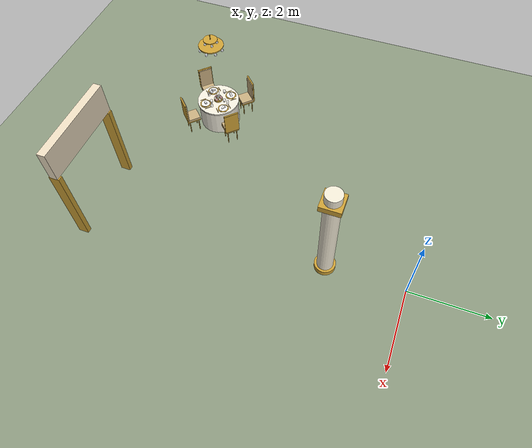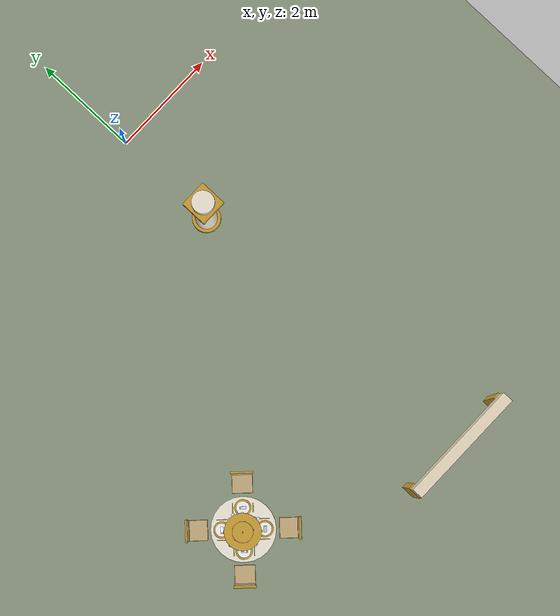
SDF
<sdf version="1.9">
 <world name="dar_tunibot">
  <model name="ground_plane">
   <static>true</static>
   <link name="link">
    <collision name="collision">
     <geometry><plane><normal>0 0 1</normal><size>60 60</size></plane></geometry>
    </collision>
    <visual name="visual">
     <geometry><plane><normal>0 0 1</normal><size>60 60</size></plane></geometry>
     <material><ambient>0.55 0.6 0.5 1</ambient><diffuse>0.55 0.6 0.5 1</diffuse></material>
    </visual>
   </link>
  </model>
  <model name="entrance">
   <static>true</static>
   <pose>0.0 -8.0 0 0 0 0.0</pose>
   <link name="link">
    <visual name="post_a_v">
     <pose>-1.060 0.000 1.100 0.0000 0.0000 0.0000</pose>
     <geometry><box><size>0.120 0.260 2.200</size></box></geometry>
     <material>
      <ambient>0.8 0.63 0.21 1</ambient>
      <diffuse>0.8 0.63 0.21 1</diffuse>
      <specular>0.1 0.1 0.1 1</specular>
     </material>
    </visual>
    <visual name="post_b_v">
     <pose>1.060 0.000 1.100 0.0000 0.0000 0.0000</pose>
     <geometry><box><size>0.120 0.260 2.200</size></box></geometry>
     <material>
      <ambient>0.8 0.63 0.21 1</ambient>
      <diffuse>0.8 0.63 0.21 1</diffuse>
      <specular>0.1 0.1 0.1 1</specular>
     </material>
    </visual>
    <visual name="lintel_v">
     <pose>0.000 0.000 2.600 0.0000 0.0000 0.0000</pose>
     <geometry><box><size>2.240 0.200 0.800</size></box></geometry>
     <material>
      <ambient>0.93 0.87 0.76 1</ambient>
      <diffuse>0.93 0.87 0.76 1</diffuse>
      <specular>0.1 0.1 0.1 1</specular>
     </material>
    </visual>
    <collision name="lintel_c">
     <pose>0.000 0.000 2.600 0.0000 0.0000 0.0000</pose>
     <geometry><box><size>2.240 0.200 0.800</size></box></geometry>
    </collision>
   </link>
  </model>
  <model name="column_1">
   <static>true</static>
   <pose>0 -2 0 0 0 0</pose>
   <link name="link">
    <visual name="base_v">
     <pose>0.000 0.000 0.075 0.0000 0.0000 0.0000</pose>
     <geometry><cylinder><radius>0.260</radius><length>0.150</length></cylinder></geometry>
     <material>
      <ambient>0.8 0.63 0.21 1</ambient>
      <diffuse>0.8 0.63 0.21 1</diffuse>
      <specular>0.1 0.1 0.1 1</specular>
     </material>
    </visual>
    <collision name="base_c">
     <pose>0.000 0.000 0.075 0.0000 0.0000 0.0000</pose>
     <geometry><cylinder><radius>0.260</radius><length>0.150</length></cylinder></geometry>
    </collision>
    <visual name="shaft_v">
     <pose>0.000 0.000 1.500 0.0000 0.0000 0.0000</pose>
     <geometry><cylinder><radius>0.200</radius><length>3.000</length></cylinder></geometry>
     <material>
      <ambient>0.95 0.92 0.84 1</ambient>
      <diffuse>0.95 0.92 0.84 1</diffuse>
      <specular>0.1 0.1 0.1 1</specular>
     </material>
    </visual>
    <collision name="shaft_c">
     <pose>0.000 0.000 1.500 0.0000 0.0000 0.0000</pose>
     <geometry><cylinder><radius>0.200</radius><length>3.000</length></cylinder></geometry>
    </collision>
    <visual name="capital_v">
     <pose>0.000 0.000 2.700 0.0000 0.0000 0.0000</pose>
     <geometry><box><size>0.500 0.500 0.150</size></box></geometry>
     <material>
      <ambient>0.8 0.63 0.21 1</ambient>
      <diffuse>0.8 0.63 0.21 1</diffuse>
      <specular>0.1 0.1 0.1 1</specular>
     </material>
    </visual>
   </link>
  </model>
  <model name="table_6">
   <static>true</static>
   <pose>-3.6 -6.3 0 0 0 0</pose>
   <link name="link">
    <visual name="cloth_v">
     <pose>0.000 0.000 0.370 0.0000 0.0000 0.0000</pose>
     <geometry><cylinder><radius>0.550</radius><length>0.740</length></cylinder></geometry>
     <material>
      <ambient>0.95 0.93 0.87 1</ambient>
      <diffuse>0.95 0.93 0.87 1</diffuse>
      <specular>0.1 0.1 0.1 1</specular>
     </material>
    </visual>
    <collision name="cloth_c">
     <pose>0.000 0.000 0.370 0.0000 0.0000 0.0000</pose>
     <geometry><cylinder><radius>0.550</radius><length>0.740</length></cylinder></geometry>
    </collision>
    <visual name="drape_v">
     <pose>0.000 0.000 0.750 0.0000 0.0000 0.0000</pose>
     <geometry><cylinder><radius>0.580</radius><length>0.040</length></cylinder></geometry>
     <material>
      <ambient>0.95 0.93 0.87 1</ambient>
      <diffuse>0.95 0.93 0.87 1</diffuse>
      <specular>0.1 0.1 0.1 1</specular>
     </material>
    </visual>
    <visual name="bowl_v">
     <pose>0.000 0.000 0.795 0.0000 0.0000 0.0000</pose>
     <geometry><cylinder><radius>0.120</radius><length>0.050</length></cylinder></geometry>
     <material>
      <ambient>0.8 0.63 0.21 1</ambient>
      <diffuse>0.8 0.63 0.21 1</diffuse>
      <specular>0.1 0.1 0.1 1</specular>
     </material>
    </visual>
    <visual name="bowl_foot_v">
     <pose>0.000 0.000 0.775 0.0000 0.0000 0.0000</pose>
     <geometry><cylinder><radius>0.060</radius><length>0.020</length></cylinder></geometry>
     <material>
      <ambient>0.8 0.63 0.21 1</ambient>
      <diffuse>0.8 0.63 0.21 1</diffuse>
      <specular>0.1 0.1 0.1 1</specular>
     </material>
    </visual>
    <visual name="candle_v">
     <pose>0.000 0.000 0.870 0.0000 0.0000 0.0000</pose>
     <geometry><cylinder><radius>0.022</radius><length>0.100</length></cylinder></geometry>
     <material>
      <ambient>0.98 0.98 0.97 1</ambient>
      <diffuse>0.98 0.98 0.97 1</diffuse>
      <specular>0.1 0.1 0.1 1</specular>
     </material>
    </visual>
    <visual name="flame_v">
     <pose>0.000 0.000 0.935 0.0000 0.0000 0.0000</pose>
     <geometry><sphere><radius>0.014</radius></sphere></geometry>
     <material>
      <ambient>0.8 0.63 0.21 1</ambient>
      <diffuse>0.8 0.63 0.21 1</diffuse>
      <specular>0.1 0.1 0.1 1</specular>
      <emissive>1.0 0.6 0.2 1</emissive>
     </material>
    </visual>
    <visual name="hurricane_v">
     <pose>0.000 0.000 0.940 0.0000 0.0000 0.0000</pose>
     <geometry><cylinder><radius>0.045</radius><length>0.240</length></cylinder></geometry>
     <transparency>0.75</transparency>
     <material>
      <ambient>0.9 0.92 0.96 1</ambient>
      <diffuse>0.9 0.92 0.96 1</diffuse>
      <specular>0.1 0.1 0.1 1</specular>
     </material>
    </visual>
    <visual name="rose0_v">
     <pose>0.085 0.000 0.835 0.0000 0.0000 0.0000</pose>
     <geometry><sphere><radius>0.035</radius></sphere></geometry>
     <material>
      <ambient>0.93 0.7 0.72 1</ambient>
      <diffuse>0.93 0.7 0.72 1</diffuse>
      <specular>0.1 0.1 0.1 1</specular>
     </material>
    </visual>
    <visual name="rose1_v">
     <pose>0.043 0.074 0.835 0.0000 0.0000 0.0000</pose>
     <geometry><sphere><radius>0.035</radius></sphere></geometry>
     <material>
      <ambient>0.97 0.95 0.91 1</ambient>
      <diffuse>0.97 0.95 0.91 1</diffuse>
      <specular>0.1 0.1 0.1 1</specular>
     </material>
    </visual>
    <visual name="rose2_v">
     <pose>-0.042 0.074 0.835 0.0000 0.0000 0.0000</pose>
     <geometry><sphere><radius>0.035</radius></sphere></geometry>
     <material>
      <ambient>0.93 0.7 0.72 1</ambient>
      <diffuse>0.93 0.7 0.72 1</diffuse>
      <specular>0.1 0.1 0.1 1</specular>
     </material>
    </visual>
    <visual name="rose3_v">
     <pose>-0.085 0.000 0.835 0.0000 0.0000 0.0000</pose>
     <geometry><sphere><radius>0.035</radius></sphere></geometry>
     <material>
      <ambient>0.97 0.95 0.91 1</ambient>
      <diffuse>0.97 0.95 0.91 1</diffuse>
      <specular>0.1 0.1 0.1 1</specular>
     </material>
    </visual>
    <visual name="rose4_v">
     <pose>-0.043 -0.074 0.835 0.0000 0.0000 0.0000</pose>
     <geometry><sphere><radius>0.035</radius></sphere></geometry>
     <material>
      <ambient>0.93 0.7 0.72 1</ambient>
      <diffuse>0.93 0.7 0.72 1</diffuse>
      <specular>0.1 0.1 0.1 1</specular>
     </material>
    </visual>
    <visual name="rose5_v">
     <pose>0.043 -0.074 0.835 0.0000 0.0000 0.0000</pose>
     <geometry><sphere><radius>0.035</radius></sphere></geometry>
     <material>
      <ambient>0.97 0.95 0.91 1</ambient>
      <diffuse>0.97 0.95 0.91 1</diffuse>
      <specular>0.1 0.1 0.1 1</specular>
     </material>
    </visual>
    <collision name="seat0_c">
     <pose>0.580 0.580 0.225 0.0000 0.0000 0.0000</pose>
     <geometry><box><size>0.400 0.400 0.450</size></box></geometry>
    </collision>
    <visual name="seat_frame0_v">
     <pose>0.580 0.580 0.430 0.0000 0.0000 0.7854</pose>
     <geometry><box><size>0.370 0.370 0.030</size></box></geometry>
     <material>
      <ambient>0.8 0.63 0.21 1</ambient>
      <diffuse>0.8 0.63 0.21 1</diffuse>
      <specular>0.1 0.1 0.1 1</specular>
     </material>
    </visual>
    <visual name="cushion0_v">
     <pose>0.580 0.580 0.480 0.0000 0.0000 0.7854</pose>
     <geometry><box><size>0.360 0.360 0.070</size></box></geometry>
     <material>
      <ambient>0.78 0.68 0.5 1</ambient>
      <diffuse>0.78 0.68 0.5 1</diffuse>
      <specular>0.1 0.1 0.1 1</specular>
     </material>
    </visual>
    <visual name="back_frame0_v">
     <pose>0.707 0.707 0.780 0.0000 0.0000 0.7854</pose>
     <geometry><box><size>0.025 0.400 0.620</size></box></geometry>
     <material>
      <ambient>0.8 0.63 0.21 1</ambient>
      <diffuse>0.8 0.63 0.21 1</diffuse>
      <specular>0.1 0.1 0.1 1</specular>
     </material>
    </visual>
    <visual name="back0_v">
     <pose>0.697 0.697 0.780 0.0000 0.0000 0.7854</pose>
     <geometry><box><size>0.050 0.360 0.580</size></box></geometry>
     <material>
      <ambient>0.78 0.68 0.5 1</ambient>
      <diffuse>0.78 0.68 0.5 1</diffuse>
      <specular>0.1 0.1 0.1 1</specular>
     </material>
    </visual>
    <visual name="back_top0_v">
     <pose>0.707 0.707 1.090 1.5708 0.0000 0.7854</pose>
     <geometry><cylinder><radius>0.020</radius><length>0.400</length></cylinder></geometry>
     <material>
      <ambient>0.8 0.63 0.21 1</ambient>
      <diffuse>0.8 0.63 0.21 1</diffuse>
      <specular>0.1 0.1 0.1 1</specular>
     </material>
    </visual>
    <visual name="leg0_0_v">
     <pose>0.580 0.396 0.210 0.0000 0.0000 0.7854</pose>
     <geometry><cylinder><radius>0.012</radius><length>0.420</length></cylinder></geometry>
     <material>
      <ambient>0.8 0.63 0.21 1</ambient>
      <diffuse>0.8 0.63 0.21 1</diffuse>
      <specular>0.1 0.1 0.1 1</specular>
     </material>
    </visual>
    <visual name="leg0_1_v">
     <pose>0.396 0.580 0.210 0.0000 0.0000 0.7854</pose>
     <geometry><cylinder><radius>0.012</radius><length>0.420</length></cylinder></geometry>
     <material>
      <ambient>0.8 0.63 0.21 1</ambient>
      <diffuse>0.8 0.63 0.21 1</diffuse>
      <specular>0.1 0.1 0.1 1</specular>
     </material>
    </visual>
    <visual name="leg0_2_v">
     <pose>0.764 0.580 0.210 0.0000 0.0000 0.7854</pose>
     <geometry><cylinder><radius>0.012</radius><length>0.420</length></cylinder></geometry>
     <material>
      <ambient>0.8 0.63 0.21 1</ambient>
      <diffuse>0.8 0.63 0.21 1</diffuse>
      <specular>0.1 0.1 0.1 1</specular>
     </material>
    </visual>
    <visual name="leg0_3_v">
     <pose>0.580 0.764 0.210 0.0000 0.0000 0.7854</pose>
     <geometry><cylinder><radius>0.012</radius><length>0.420</length></cylinder></geometry>
     <material>
      <ambient>0.8 0.63 0.21 1</ambient>
      <diffuse>0.8 0.63 0.21 1</diffuse>
      <specular>0.1 0.1 0.1 1</specular>
     </material>
    </visual>
    <visual name="charger0_v">
     <pose>0.269 0.269 0.773 0.0000 0.0000 0.7854</pose>
     <geometry><cylinder><radius>0.150</radius><length>0.006</length></cylinder></geometry>
     <material>
      <ambient>0.8 0.63 0.21 1</ambient>
      <diffuse>0.8 0.63 0.21 1</diffuse>
      <specular>0.1 0.1 0.1 1</specular>
     </material>
    </visual>
    <visual name="plate0_v">
     <pose>0.269 0.269 0.781 0.0000 0.0000 0.7854</pose>
     <geometry><cylinder><radius>0.120</radius><length>0.010</length></cylinder></geometry>
     <material>
      <ambient>0.98 0.98 0.97 1</ambient>
      <diffuse>0.98 0.98 0.97 1</diffuse>
      <specular>0.1 0.1 0.1 1</specular>
     </material>
    </visual>
    <visual name="napkin0_v">
     <pose>0.269 0.269 0.803 0.3500 0.0000 0.7854</pose>
     <geometry><box><size>0.050 0.110 0.035</size></box></geometry>
     <material>
      <ambient>0.98 0.98 0.97 1</ambient>
      <diffuse>0.98 0.98 0.97 1</diffuse>
      <specular>0.1 0.1 0.1 1</specular>
     </material>
    </visual>
    <visual name="fork0_v">
     <pose>0.396 0.141 0.772 0.0000 0.0000 0.7854</pose>
     <geometry><box><size>0.170 0.014 0.004</size></box></geometry>
     <material>
      <ambient>0.8 0.63 0.21 1</ambient>
      <diffuse>0.8 0.63 0.21 1</diffuse>
      <specular>0.1 0.1 0.1 1</specular>
     </material>
    </visual>
    <visual name="knife0_v">
     <pose>0.141 0.396 0.772 0.0000 0.0000 0.7854</pose>
     <geometry><box><size>0.180 0.012 0.004</size></box></geometry>
     <material>
      <ambient>0.8 0.63 0.21 1</ambient>
      <diffuse>0.8 0.63 0.21 1</diffuse>
      <specular>0.1 0.1 0.1 1</specular>
     </material>
    </visual>
    <visual name="wine_stem0_v">
     <pose>0.092 0.233 0.820 0.0000 0.0000 0.7854</pose>
     <geometry><cylinder><radius>0.004</radius><length>0.100</length></cylinder></geometry>
     <material>
      <ambient>0.9 0.92 0.96 1</ambient>
      <diffuse>0.9 0.92 0.96 1</diffuse>
      <specular>0.1 0.1 0.1 1</specular>
     </material>
    </visual>
    <visual name="wine_bowl0_v">
     <pose>0.092 0.233 0.905 0.0000 0.0000 0.7854</pose>
     <geometry><cylinder><radius>0.035</radius><length>0.070</length></cylinder></geometry>
     <transparency>0.6</transparency>
     <material>
      <ambient>0.9 0.92 0.96 1</ambient>
      <diffuse>0.9 0.92 0.96 1</diffuse>
      <specular>0.1 0.1 0.1 1</specular>
     </material>
    </visual>
    <visual name="water0_v">
     <pose>0.057 0.311 0.820 0.0000 0.0000 0.7854</pose>
     <geometry><cylinder><radius>0.030</radius><length>0.100</length></cylinder></geometry>
     <transparency>0.6</transparency>
     <material>
      <ambient>0.9 0.92 0.96 1</ambient>
      <diffuse>0.9 0.92 0.96 1</diffuse>
      <specular>0.1 0.1 0.1 1</specular>
     </material>
    </visual>
    <collision name="seat1_c">
     <pose>-0.580 0.580 0.225 0.0000 0.0000 0.0000</pose>
     <geometry><box><size>0.400 0.400 0.450</size></box></geometry>
    </collision>
    <visual name="seat_frame1_v">
     <pose>-0.580 0.580 0.430 0.0000 0.0000 2.3562</pose>
     <geometry><box><size>0.370 0.370 0.030</size></box></geometry>
     <material>
      <ambient>0.8 0.63 0.21 1</ambient>
      <diffuse>0.8 0.63 0.21 1</diffuse>
      <specular>0.1 0.1 0.1 1</specular>
     </material>
    </visual>
    <visual name="cushion1_v">
     <pose>-0.580 0.580 0.480 0.0000 0.0000 2.3562</pose>
     <geometry><box><size>0.360 0.360 0.070</size></box></geometry>
     <material>
      <ambient>0.78 0.68 0.5 1</ambient>
      <diffuse>0.78 0.68 0.5 1</diffuse>
      <specular>0.1 0.1 0.1 1</specular>
     </material>
    </visual>
    <visual name="back_frame1_v">
     <pose>-0.707 0.707 0.780 0.0000 0.0000 2.3562</pose>
     <geometry><box><size>0.025 0.400 0.620</size></box></geometry>
     <material>
      <ambient>0.8 0.63 0.21 1</ambient>
      <diffuse>0.8 0.63 0.21 1</diffuse>
      <specular>0.1 0.1 0.1 1</specular>
     </material>
    </visual>
    <visual name="back1_v">
     <pose>-0.697 0.697 0.780 0.0000 0.0000 2.3562</pose>
     <geometry><box><size>0.050 0.360 0.580</size></box></geometry>
     <material>
      <ambient>0.78 0.68 0.5 1</ambient>
      <diffuse>0.78 0.68 0.5 1</diffuse>
      <specular>0.1 0.1 0.1 1</specular>
     </material>
    </visual>
    <visual name="back_top1_v">
     <pose>-0.707 0.707 1.090 1.5708 0.0000 2.3562</pose>
     <geometry><cylinder><radius>0.020</radius><length>0.400</length></cylinder></geometry>
     <material>
      <ambient>0.8 0.63 0.21 1</ambient>
      <diffuse>0.8 0.63 0.21 1</diffuse>
      <specular>0.1 0.1 0.1 1</specular>
     </material>
    </visual>
    <visual name="leg1_0_v">
     <pose>-0.396 0.580 0.210 0.0000 0.0000 2.3562</pose>
     <geometry><cylinder><radius>0.012</radius><length>0.420</length></cylinder></geometry>
     <material>
      <ambient>0.8 0.63 0.21 1</ambient>
      <diffuse>0.8 0.63 0.21 1</diffuse>
      <specular>0.1 0.1 0.1 1</specular>
     </material>
    </visual>
    <visual name="leg1_1_v">
     <pose>-0.580 0.396 0.210 0.0000 0.0000 2.3562</pose>
     <geometry><cylinder><radius>0.012</radius><length>0.420</length></cylinder></geometry>
     <material>
      <ambient>0.8 0.63 0.21 1</ambient>
      <diffuse>0.8 0.63 0.21 1</diffuse>
      <specular>0.1 0.1 0.1 1</specular>
     </material>
    </visual>
    <visual name="leg1_2_v">
     <pose>-0.580 0.764 0.210 0.0000 0.0000 2.3562</pose>
     <geometry><cylinder><radius>0.012</radius><length>0.420</length></cylinder></geometry>
     <material>
      <ambient>0.8 0.63 0.21 1</ambient>
      <diffuse>0.8 0.63 0.21 1</diffuse>
      <specular>0.1 0.1 0.1 1</specular>
     </material>
    </visual>
    <visual name="leg1_3_v">
     <pose>-0.764 0.580 0.210 0.0000 0.0000 2.3562</pose>
     <geometry><cylinder><radius>0.012</radius><length>0.420</length></cylinder></geometry>
     <material>
      <ambient>0.8 0.63 0.21 1</ambient>
      <diffuse>0.8 0.63 0.21 1</diffuse>
      <specular>0.1 0.1 0.1 1</specular>
     </material>
    </visual>
    <visual name="charger1_v">
     <pose>-0.269 0.269 0.773 0.0000 0.0000 2.3562</pose>
     <geometry><cylinder><radius>0.150</radius><length>0.006</length></cylinder></geometry>
     <material>
      <ambient>0.8 0.63 0.21 1</ambient>
      <diffuse>0.8 0.63 0.21 1</diffuse>
      <specular>0.1 0.1 0.1 1</specular>
     </material>
    </visual>
    <visual name="plate1_v">
     <pose>-0.269 0.269 0.781 0.0000 0.0000 2.3562</pose>
     <geometry><cylinder><radius>0.120</radius><length>0.010</length></cylinder></geometry>
     <material>
      <ambient>0.98 0.98 0.97 1</ambient>
      <diffuse>0.98 0.98 0.97 1</diffuse>
      <specular>0.1 0.1 0.1 1</specular>
     </material>
    </visual>
    <visual name="napkin1_v">
     <pose>-0.269 0.269 0.803 0.3500 0.0000 2.3562</pose>
     <geometry><box><size>0.050 0.110 0.035</size></box></geometry>
     <material>
      <ambient>0.98 0.98 0.97 1</ambient>
      <diffuse>0.98 0.98 0.97 1</diffuse>
      <specular>0.1 0.1 0.1 1</specular>
     </material>
    </visual>
    <visual name="fork1_v">
     <pose>-0.141 0.396 0.772 0.0000 0.0000 2.3562</pose>
     <geometry><box><size>0.170 0.014 0.004</size></box></geometry>
     <material>
      <ambient>0.8 0.63 0.21 1</ambient>
      <diffuse>0.8 0.63 0.21 1</diffuse>
      <specular>0.1 0.1 0.1 1</specular>
     </material>
    </visual>
    <visual name="knife1_v">
     <pose>-0.396 0.141 0.772 0.0000 0.0000 2.3562</pose>
     <geometry><box><size>0.180 0.012 0.004</size></box></geometry>
     <material>
      <ambient>0.8 0.63 0.21 1</ambient>
      <diffuse>0.8 0.63 0.21 1</diffuse>
      <specular>0.1 0.1 0.1 1</specular>
     </material>
    </visual>
    <visual name="wine_stem1_v">
     <pose>-0.233 0.092 0.820 0.0000 0.0000 2.3562</pose>
     <geometry><cylinder><radius>0.004</radius><length>0.100</length></cylinder></geometry>
     <material>
      <ambient>0.9 0.92 0.96 1</ambient>
      <diffuse>0.9 0.92 0.96 1</diffuse>
      <specular>0.1 0.1 0.1 1</specular>
     </material>
    </visual>
    <visual name="wine_bowl1_v">
     <pose>-0.233 0.092 0.905 0.0000 0.0000 2.3562</pose>
     <geometry><cylinder><radius>0.035</radius><length>0.070</length></cylinder></geometry>
     <transparency>0.6</transparency>
     <material>
      <ambient>0.9 0.92 0.96 1</ambient>
      <diffuse>0.9 0.92 0.96 1</diffuse>
      <specular>0.1 0.1 0.1 1</specular>
     </material>
    </visual>
    <visual name="water1_v">
     <pose>-0.311 0.057 0.820 0.0000 0.0000 2.3562</pose>
     <geometry><cylinder><radius>0.030</radius><length>0.100</length></cylinder></geometry>
     <transparency>0.6</transparency>
     <material>
      <ambient>0.9 0.92 0.96 1</ambient>
      <diffuse>0.9 0.92 0.96 1</diffuse>
      <specular>0.1 0.1 0.1 1</specular>
     </material>
    </visual>
    <collision name="seat2_c">
     <pose>-0.580 -0.580 0.225 0.0000 0.0000 0.0000</pose>
     <geometry><box><size>0.400 0.400 0.450</size></box></geometry>
    </collision>
    <visual name="seat_frame2_v">
     <pose>-0.580 -0.580 0.430 0.0000 0.0000 3.9270</pose>
     <geometry><box><size>0.370 0.370 0.030</size></box></geometry>
     <material>
      <ambient>0.8 0.63 0.21 1</ambient>
      <diffuse>0.8 0.63 0.21 1</diffuse>
      <specular>0.1 0.1 0.1 1</specular>
     </material>
    </visual>
    <visual name="cushion2_v">
     <pose>-0.580 -0.580 0.480 0.0000 0.0000 3.9270</pose>
     <geometry><box><size>0.360 0.360 0.070</size></box></geometry>
     <material>
      <ambient>0.78 0.68 0.5 1</ambient>
      <diffuse>0.78 0.68 0.5 1</diffuse>
      <specular>0.1 0.1 0.1 1</specular>
     </material>
    </visual>
    <visual name="back_frame2_v">
     <pose>-0.707 -0.707 0.780 0.0000 0.0000 3.9270</pose>
     <geometry><box><size>0.025 0.400 0.620</size></box></geometry>
     <material>
      <ambient>0.8 0.63 0.21 1</ambient>
      <diffuse>0.8 0.63 0.21 1</diffuse>
      <specular>0.1 0.1 0.1 1</specular>
     </material>
    </visual>
    <visual name="back2_v">
     <pose>-0.697 -0.697 0.780 0.0000 0.0000 3.9270</pose>
     <geometry><box><size>0.050 0.360 0.580</size></box></geometry>
     <material>
      <ambient>0.78 0.68 0.5 1</ambient>
      <diffuse>0.78 0.68 0.5 1</diffuse>
      <specular>0.1 0.1 0.1 1</specular>
     </material>
    </visual>
    <visual name="back_top2_v">
     <pose>-0.707 -0.707 1.090 1.5708 0.0000 3.9270</pose>
     <geometry><cylinder><radius>0.020</radius><length>0.400</length></cylinder></geometry>
     <material>
      <ambient>0.8 0.63 0.21 1</ambient>
      <diffuse>0.8 0.63 0.21 1</diffuse>
      <specular>0.1 0.1 0.1 1</specular>
     </material>
    </visual>
    <visual name="leg2_0_v">
     <pose>-0.580 -0.396 0.210 0.0000 0.0000 3.9270</pose>
     <geometry><cylinder><radius>0.012</radius><length>0.420</length></cylinder></geometry>
     <material>
      <ambient>0.8 0.63 0.21 1</ambient>
      <diffuse>0.8 0.63 0.21 1</diffuse>
      <specular>0.1 0.1 0.1 1</specular>
     </material>
    </visual>
    <visual name="leg2_1_v">
     <pose>-0.396 -0.580 0.210 0.0000 0.0000 3.9270</pose>
     <geometry><cylinder><radius>0.012</radius><length>0.420</length></cylinder></geometry>
     <material>
      <ambient>0.8 0.63 0.21 1</ambient>
      <diffuse>0.8 0.63 0.21 1</diffuse>
      <specular>0.1 0.1 0.1 1</specular>
     </material>
    </visual>
    <visual name="leg2_2_v">
     <pose>-0.764 -0.580 0.210 0.0000 0.0000 3.9270</pose>
     <geometry><cylinder><radius>0.012</radius><length>0.420</length></cylinder></geometry>
     <material>
      <ambient>0.8 0.63 0.21 1</ambient>
      <diffuse>0.8 0.63 0.21 1</diffuse>
      <specular>0.1 0.1 0.1 1</specular>
     </material>
    </visual>
    <visual name="leg2_3_v">
     <pose>-0.580 -0.764 0.210 0.0000 0.0000 3.9270</pose>
     <geometry><cylinder><radius>0.012</radius><length>0.420</length></cylinder></geometry>
     <material>
      <ambient>0.8 0.63 0.21 1</ambient>
      <diffuse>0.8 0.63 0.21 1</diffuse>
      <specular>0.1 0.1 0.1 1</specular>
     </material>
    </visual>
    <visual name="charger2_v">
     <pose>-0.269 -0.269 0.773 0.0000 0.0000 3.9270</pose>
     <geometry><cylinder><radius>0.150</radius><length>0.006</length></cylinder></geometry>
     <material>
      <ambient>0.8 0.63 0.21 1</ambient>
      <diffuse>0.8 0.63 0.21 1</diffuse>
      <specular>0.1 0.1 0.1 1</specular>
     </material>
    </visual>
    <visual name="plate2_v">
     <pose>-0.269 -0.269 0.781 0.0000 0.0000 3.9270</pose>
     <geometry><cylinder><radius>0.120</radius><length>0.010</length></cylinder></geometry>
     <material>
      <ambient>0.98 0.98 0.97 1</ambient>
      <diffuse>0.98 0.98 0.97 1</diffuse>
      <specular>0.1 0.1 0.1 1</specular>
     </material>
    </visual>
    <visual name="napkin2_v">
     <pose>-0.269 -0.269 0.803 0.3500 0.0000 3.9270</pose>
     <geometry><box><size>0.050 0.110 0.035</size></box></geometry>
     <material>
      <ambient>0.98 0.98 0.97 1</ambient>
      <diffuse>0.98 0.98 0.97 1</diffuse>
      <specular>0.1 0.1 0.1 1</specular>
     </material>
    </visual>
    <visual name="fork2_v">
     <pose>-0.396 -0.141 0.772 0.0000 0.0000 3.9270</pose>
     <geometry><box><size>0.170 0.014 0.004</size></box></geometry>
     <material>
      <ambient>0.8 0.63 0.21 1</ambient>
      <diffuse>0.8 0.63 0.21 1</diffuse>
      <specular>0.1 0.1 0.1 1</specular>
     </material>
    </visual>
    <visual name="knife2_v">
     <pose>-0.141 -0.396 0.772 0.0000 0.0000 3.9270</pose>
     <geometry><box><size>0.180 0.012 0.004</size></box></geometry>
     <material>
      <ambient>0.8 0.63 0.21 1</ambient>
      <diffuse>0.8 0.63 0.21 1</diffuse>
      <specular>0.1 0.1 0.1 1</specular>
     </material>
    </visual>
    <visual name="wine_stem2_v">
     <pose>-0.092 -0.233 0.820 0.0000 0.0000 3.9270</pose>
     <geometry><cylinder><radius>0.004</radius><length>0.100</length></cylinder></geometry>
     <material>
      <ambient>0.9 0.92 0.96 1</ambient>
      <diffuse>0.9 0.92 0.96 1</diffuse>
      <specular>0.1 0.1 0.1 1</specular>
     </material>
    </visual>
    <visual name="wine_bowl2_v">
     <pose>-0.092 -0.233 0.905 0.0000 0.0000 3.9270</pose>
     <geometry><cylinder><radius>0.035</radius><length>0.070</length></cylinder></geometry>
     <transparency>0.6</transparency>
     <material>
      <ambient>0.9 0.92 0.96 1</ambient>
      <diffuse>0.9 0.92 0.96 1</diffuse>
      <specular>0.1 0.1 0.1 1</specular>
     </material>
    </visual>
    <visual name="water2_v">
     <pose>-0.057 -0.311 0.820 0.0000 0.0000 3.9270</pose>
     <geometry><cylinder><radius>0.030</radius><length>0.100</length></cylinder></geometry>
     <transparency>0.6</transparency>
     <material>
      <ambient>0.9 0.92 0.96 1</ambient>
      <diffuse>0.9 0.92 0.96 1</diffuse>
      <specular>0.1 0.1 0.1 1</specular>
     </material>
    </visual>
    <collision name="seat3_c">
     <pose>0.580 -0.580 0.225 0.0000 0.0000 0.0000</pose>
     <geometry><box><size>0.400 0.400 0.450</size></box></geometry>
    </collision>
    <visual name="seat_frame3_v">
     <pose>0.580 -0.580 0.430 0.0000 0.0000 5.4978</pose>
     <geometry><box><size>0.370 0.370 0.030</size></box></geometry>
     <material>
      <ambient>0.8 0.63 0.21 1</ambient>
      <diffuse>0.8 0.63 0.21 1</diffuse>
      <specular>0.1 0.1 0.1 1</specular>
     </material>
    </visual>
    <visual name="cushion3_v">
     <pose>0.580 -0.580 0.480 0.0000 0.0000 5.4978</pose>
     <geometry><box><size>0.360 0.360 0.070</size></box></geometry>
     <material>
      <ambient>0.78 0.68 0.5 1</ambient>
      <diffuse>0.78 0.68 0.5 1</diffuse>
      <specular>0.1 0.1 0.1 1</specular>
     </material>
    </visual>
    <visual name="back_frame3_v">
     <pose>0.707 -0.707 0.780 0.0000 0.0000 5.4978</pose>
     <geometry><box><size>0.025 0.400 0.620</size></box></geometry>
     <material>
      <ambient>0.8 0.63 0.21 1</ambient>
      <diffuse>0.8 0.63 0.21 1</diffuse>
      <specular>0.1 0.1 0.1 1</specular>
     </material>
    </visual>
    <visual name="back3_v">
     <pose>0.697 -0.697 0.780 0.0000 0.0000 5.4978</pose>
     <geometry><box><size>0.050 0.360 0.580</size></box></geometry>
     <material>
      <ambient>0.78 0.68 0.5 1</ambient>
      <diffuse>0.78 0.68 0.5 1</diffuse>
      <specular>0.1 0.1 0.1 1</specular>
     </material>
    </visual>
    <visual name="back_top3_v">
     <pose>0.707 -0.707 1.090 1.5708 0.0000 5.4978</pose>
     <geometry><cylinder><radius>0.020</radius><length>0.400</length></cylinder></geometry>
     <material>
      <ambient>0.8 0.63 0.21 1</ambient>
      <diffuse>0.8 0.63 0.21 1</diffuse>
      <specular>0.1 0.1 0.1 1</specular>
     </material>
    </visual>
    <visual name="leg3_0_v">
     <pose>0.396 -0.580 0.210 0.0000 0.0000 5.4978</pose>
     <geometry><cylinder><radius>0.012</radius><length>0.420</length></cylinder></geometry>
     <material>
      <ambient>0.8 0.63 0.21 1</ambient>
      <diffuse>0.8 0.63 0.21 1</diffuse>
      <specular>0.1 0.1 0.1 1</specular>
     </material>
    </visual>
    <visual name="leg3_1_v">
     <pose>0.580 -0.396 0.210 0.0000 0.0000 5.4978</pose>
     <geometry><cylinder><radius>0.012</radius><length>0.420</length></cylinder></geometry>
     <material>
      <ambient>0.8 0.63 0.21 1</ambient>
      <diffuse>0.8 0.63 0.21 1</diffuse>
      <specular>0.1 0.1 0.1 1</specular>
     </material>
    </visual>
    <visual name="leg3_2_v">
     <pose>0.580 -0.764 0.210 0.0000 0.0000 5.4978</pose>
     <geometry><cylinder><radius>0.012</radius><length>0.420</length></cylinder></geometry>
     <material>
      <ambient>0.8 0.63 0.21 1</ambient>
      <diffuse>0.8 0.63 0.21 1</diffuse>
      <specular>0.1 0.1 0.1 1</specular>
     </material>
    </visual>
    <visual name="leg3_3_v">
     <pose>0.764 -0.580 0.210 0.0000 0.0000 5.4978</pose>
     <geometry><cylinder><radius>0.012</radius><length>0.420</length></cylinder></geometry>
     <material>
      <ambient>0.8 0.63 0.21 1</ambient>
      <diffuse>0.8 0.63 0.21 1</diffuse>
      <specular>0.1 0.1 0.1 1</specular>
     </material>
    </visual>
    <visual name="charger3_v">
     <pose>0.269 -0.269 0.773 0.0000 0.0000 5.4978</pose>
     <geometry><cylinder><radius>0.150</radius><length>0.006</length></cylinder></geometry>
     <material>
      <ambient>0.8 0.63 0.21 1</ambient>
      <diffuse>0.8 0.63 0.21 1</diffuse>
      <specular>0.1 0.1 0.1 1</specular>
     </material>
    </visual>
    <visual name="plate3_v">
     <pose>0.269 -0.269 0.781 0.0000 0.0000 5.4978</pose>
     <geometry><cylinder><radius>0.120</radius><length>0.010</length></cylinder></geometry>
     <material>
      <ambient>0.98 0.98 0.97 1</ambient>
      <diffuse>0.98 0.98 0.97 1</diffuse>
      <specular>0.1 0.1 0.1 1</specular>
     </material>
    </visual>
    <visual name="napkin3_v">
     <pose>0.269 -0.269 0.803 0.3500 0.0000 5.4978</pose>
     <geometry><box><size>0.050 0.110 0.035</size></box></geometry>
     <material>
      <ambient>0.98 0.98 0.97 1</ambient>
      <diffuse>0.98 0.98 0.97 1</diffuse>
      <specular>0.1 0.1 0.1 1</specular>
     </material>
    </visual>
    <visual name="fork3_v">
     <pose>0.141 -0.396 0.772 0.0000 0.0000 5.4978</pose>
     <geometry><box><size>0.170 0.014 0.004</size></box></geometry>
     <material>
      <ambient>0.8 0.63 0.21 1</ambient>
      <diffuse>0.8 0.63 0.21 1</diffuse>
      <specular>0.1 0.1 0.1 1</specular>
     </material>
    </visual>
    <visual name="knife3_v">
     <pose>0.396 -0.141 0.772 0.0000 0.0000 5.4978</pose>
     <geometry><box><size>0.180 0.012 0.004</size></box></geometry>
     <material>
      <ambient>0.8 0.63 0.21 1</ambient>
      <diffuse>0.8 0.63 0.21 1</diffuse>
      <specular>0.1 0.1 0.1 1</specular>
     </material>
    </visual>
    <visual name="wine_stem3_v">
     <pose>0.233 -0.092 0.820 0.0000 0.0000 5.4978</pose>
     <geometry><cylinder><radius>0.004</radius><length>0.100</length></cylinder></geometry>
     <material>
      <ambient>0.9 0.92 0.96 1</ambient>
      <diffuse>0.9 0.92 0.96 1</diffuse>
      <specular>0.1 0.1 0.1 1</specular>
     </material>
    </visual>
    <visual name="wine_bowl3_v">
     <pose>0.233 -0.092 0.905 0.0000 0.0000 5.4978</pose>
     <geometry><cylinder><radius>0.035</radius><length>0.070</length></cylinder></geometry>
     <transparency>0.6</transparency>
     <material>
      <ambient>0.9 0.92 0.96 1</ambient>
      <diffuse>0.9 0.92 0.96 1</diffuse>
      <specular>0.1 0.1 0.1 1</specular>
     </material>
    </visual>
    <visual name="water3_v">
     <pose>0.311 -0.057 0.820 0.0000 0.0000 5.4978</pose>
     <geometry><cylinder><radius>0.030</radius><length>0.100</length></cylinder></geometry>
     <transparency>0.6</transparency>
     <material>
      <ambient>0.9 0.92 0.96 1</ambient>
      <diffuse>0.9 0.92 0.96 1</diffuse>
      <specular>0.1 0.1 0.1 1</specular>
     </material>
    </visual>
    <visual name="chand_rod_v">
     <pose>0.000 0.000 2.750 0.0000 0.0000 0.0000</pose>
     <geometry><cylinder><radius>0.010</radius><length>0.500</length></cylinder></geometry>
     <material>
      <ambient>0.8 0.63 0.21 1</ambient>
      <diffuse>0.8 0.63 0.21 1</diffuse>
      <specular>0.1 0.1 0.1 1</specular>
     </material>
    </visual>
    <visual name="chand_ring_v">
     <pose>0.000 0.000 2.680 0.0000 0.0000 0.0000</pose>
     <geometry><cylinder><radius>0.320</radius><length>0.030</length></cylinder></geometry>
     <material>
      <ambient>0.8 0.63 0.21 1</ambient>
      <diffuse>0.8 0.63 0.21 1</diffuse>
      <specular>0.1 0.1 0.1 1</specular>
     </material>
    </visual>
    <visual name="chand_ring_top_v">
     <pose>0.000 0.000 2.850 0.0000 0.0000 0.0000</pose>
     <geometry><cylinder><radius>0.180</radius><length>0.025</length></cylinder></geometry>
     <material>
      <ambient>0.8 0.63 0.21 1</ambient>
      <diffuse>0.8 0.63 0.21 1</diffuse>
      <specular>0.1 0.1 0.1 1</specular>
     </material>
    </visual>
    <visual name="chand_drop_v">
     <pose>0.000 0.000 2.520 0.0000 0.0000 0.0000</pose>
     <geometry><sphere><radius>0.050</radius></sphere></geometry>
     <material>
      <ambient>0.9 0.92 0.96 1</ambient>
      <diffuse>0.9 0.92 0.96 1</diffuse>
      <specular>0.1 0.1 0.1 1</specular>
      <emissive>0.55 0.52 0.45 1</emissive>
     </material>
    </visual>
    <visual name="crystal0_0_v">
     <pose>0.300 0.000 2.600 0.0000 0.0000 0.0000</pose>
     <geometry><sphere><radius>0.035</radius></sphere></geometry>
     <material>
      <ambient>0.9 0.92 0.96 1</ambient>
      <diffuse>0.9 0.92 0.96 1</diffuse>
      <specular>0.1 0.1 0.1 1</specular>
      <emissive>0.55 0.52 0.45 1</emissive>
     </material>
    </visual>
    <visual name="crystal0_1_v">
     <pose>0.212 0.212 2.600 0.0000 0.0000 0.0000</pose>
     <geometry><sphere><radius>0.035</radius></sphere></geometry>
     <material>
      <ambient>0.9 0.92 0.96 1</ambient>
      <diffuse>0.9 0.92 0.96 1</diffuse>
      <specular>0.1 0.1 0.1 1</specular>
      <emissive>0.55 0.52 0.45 1</emissive>
     </material>
    </visual>
    <visual name="crystal0_2_v">
     <pose>0.000 0.300 2.600 0.0000 0.0000 0.0000</pose>
     <geometry><sphere><radius>0.035</radius></sphere></geometry>
     <material>
      <ambient>0.9 0.92 0.96 1</ambient>
      <diffuse>0.9 0.92 0.96 1</diffuse>
      <specular>0.1 0.1 0.1 1</specular>
      <emissive>0.55 0.52 0.45 1</emissive>
     </material>
    </visual>
    <visual name="crystal0_3_v">
     <pose>-0.212 0.212 2.600 0.0000 0.0000 0.0000</pose>
     <geometry><sphere><radius>0.035</radius></sphere></geometry>
     <material>
      <ambient>0.9 0.92 0.96 1</ambient>
      <diffuse>0.9 0.92 0.96 1</diffuse>
      <specular>0.1 0.1 0.1 1</specular>
      <emissive>0.55 0.52 0.45 1</emissive>
     </material>
    </visual>
    <visual name="crystal0_4_v">
     <pose>-0.300 0.000 2.600 0.0000 0.0000 0.0000</pose>
     <geometry><sphere><radius>0.035</radius></sphere></geometry>
     <material>
      <ambient>0.9 0.92 0.96 1</ambient>
      <diffuse>0.9 0.92 0.96 1</diffuse>
      <specular>0.1 0.1 0.1 1</specular>
      <emissive>0.55 0.52 0.45 1</emissive>
     </material>
    </visual>
    <visual name="crystal0_5_v">
     <pose>-0.212 -0.212 2.600 0.0000 0.0000 0.0000</pose>
     <geometry><sphere><radius>0.035</radius></sphere></geometry>
     <material>
      <ambient>0.9 0.92 0.96 1</ambient>
      <diffuse>0.9 0.92 0.96 1</diffuse>
      <specular>0.1 0.1 0.1 1</specular>
      <emissive>0.55 0.52 0.45 1</emissive>
     </material>
    </visual>
    <visual name="crystal0_6_v">
     <pose>-0.000 -0.300 2.600 0.0000 0.0000 0.0000</pose>
     <geometry><sphere><radius>0.035</radius></sphere></geometry>
     <material>
      <ambient>0.9 0.92 0.96 1</ambient>
      <diffuse>0.9 0.92 0.96 1</diffuse>
      <specular>0.1 0.1 0.1 1</specular>
      <emissive>0.55 0.52 0.45 1</emissive>
     </material>
    </visual>
    <visual name="crystal0_7_v">
     <pose>0.212 -0.212 2.600 0.0000 0.0000 0.0000</pose>
     <geometry><sphere><radius>0.035</radius></sphere></geometry>
     <material>
      <ambient>0.9 0.92 0.96 1</ambient>
      <diffuse>0.9 0.92 0.96 1</diffuse>
      <specular>0.1 0.1 0.1 1</specular>
      <emissive>0.55 0.52 0.45 1</emissive>
     </material>
    </visual>
    <visual name="crystal1_0_v">
     <pose>0.129 0.094 2.770 0.0000 0.0000 0.0000</pose>
     <geometry><sphere><radius>0.030</radius></sphere></geometry>
     <material>
      <ambient>0.9 0.92 0.96 1</ambient>
      <diffuse>0.9 0.92 0.96 1</diffuse>
      <specular>0.1 0.1 0.1 1</specular>
      <emissive>0.55 0.52 0.45 1</emissive>
     </material>
    </visual>
    <visual name="crystal1_1_v">
     <pose>-0.049 0.152 2.770 0.0000 0.0000 0.0000</pose>
     <geometry><sphere><radius>0.030</radius></sphere></geometry>
     <material>
      <ambient>0.9 0.92 0.96 1</ambient>
      <diffuse>0.9 0.92 0.96 1</diffuse>
      <specular>0.1 0.1 0.1 1</specular>
      <emissive>0.55 0.52 0.45 1</emissive>
     </material>
    </visual>
    <visual name="crystal1_2_v">
     <pose>-0.160 0.000 2.770 0.0000 0.0000 0.0000</pose>
     <geometry><sphere><radius>0.030</radius></sphere></geometry>
     <material>
      <ambient>0.9 0.92 0.96 1</ambient>
      <diffuse>0.9 0.92 0.96 1</diffuse>
      <specular>0.1 0.1 0.1 1</specular>
      <emissive>0.55 0.52 0.45 1</emissive>
     </material>
    </visual>
    <visual name="crystal1_3_v">
     <pose>-0.049 -0.152 2.770 0.0000 0.0000 0.0000</pose>
     <geometry><sphere><radius>0.030</radius></sphere></geometry>
     <material>
      <ambient>0.9 0.92 0.96 1</ambient>
      <diffuse>0.9 0.92 0.96 1</diffuse>
      <specular>0.1 0.1 0.1 1</specular>
      <emissive>0.55 0.52 0.45 1</emissive>
     </material>
    </visual>
    <visual name="crystal1_4_v">
     <pose>0.129 -0.094 2.770 0.0000 0.0000 0.0000</pose>
     <geometry><sphere><radius>0.030</radius></sphere></geometry>
     <material>
      <ambient>0.9 0.92 0.96 1</ambient>
      <diffuse>0.9 0.92 0.96 1</diffuse>
      <specular>0.1 0.1 0.1 1</specular>
      <emissive>0.55 0.52 0.45 1</emissive>
     </material>
    </visual>
   </link>
  </model>
 </world>
</sdf>
